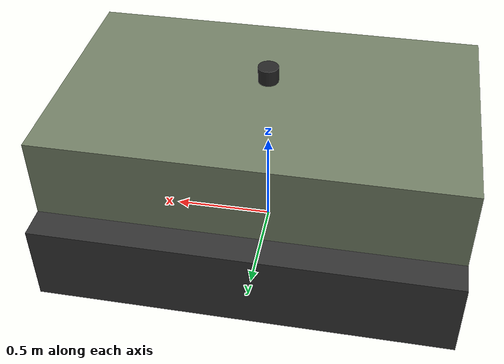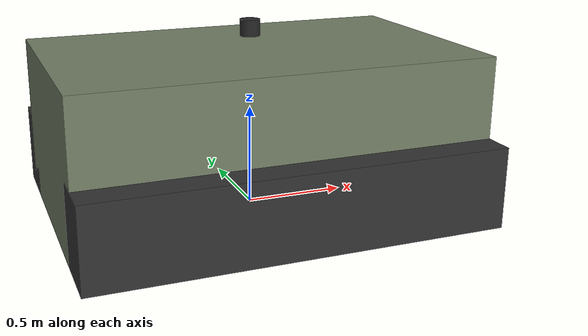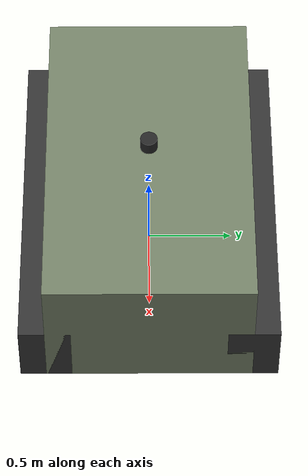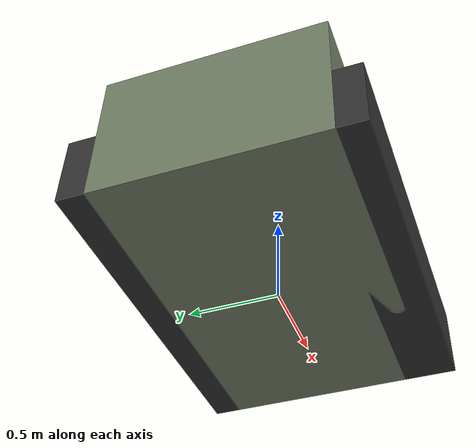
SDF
<?xml version="1.0"?>
<sdf version="1.9">
  <model name="ss500">
    <static>false</static>

    <!-- base_link: 차체 -->
    <link name="base_link">
      <pose>0 0 0.4 0 0 0</pose>

      <inertial>
        <!-- HIH-2 C48: 공차 800kg, 본체 600kg + 궤도 100kg x2 -->
        <mass>600.0</mass>
        <inertia>
          <!-- I = 1/12 * m * (h^2 + d^2), m=600kg 본체 -->
          <ixx>83.2</ixx>   <!-- 1/12 * 600 * (0.8^2 + 1.2^2) = 104 → 질량분포 보정 0.8 -->
          <iyy>185.6</iyy>  <!-- 1/12 * 600 * (0.8^2 + 2.0^2) = 232 → 보정 0.8 -->
          <izz>217.6</izz>  <!-- 1/12 * 600 * (1.2^2 + 2.0^2) = 272 → 보정 0.8 -->
          <ixy>0</ixy>
          <ixz>0</ixz>
          <iyz>0</iyz>
        </inertia>
      </inertial>

      <collision name="body_collision">
        <geometry>
          <box><size>2.0 1.2 0.8</size></box>
        </geometry>
      </collision>

      <visual name="body_visual">
        <geometry>
          <box><size>2.0 1.2 0.8</size></box>
        </geometry>
        <material>
          <ambient>0.3 0.35 0.3 1</ambient>
          <diffuse>0.45 0.5 0.4 1</diffuse>
          <specular>0.2 0.2 0.2 1</specular>
        </material>
      </visual>
    </link>

    <!-- 좌측 궤도 -->
    <link name="left_track">
      <!-- HIH-2 C48: 윤거 1.2m → offset 0.6m -->
      <pose relative_to="base_link">0 0.6 -0.2 0 0 0</pose>

      <inertial>
        <mass>100.0</mass>
        <inertia>
          <ixx>5.33</ixx>
          <iyy>34.33</iyy>
          <izz>30.33</izz>
          <ixy>0</ixy><ixz>0</ixz><iyz>0</iyz>
        </inertia>
      </inertial>

      <collision name="left_track_collision">
        <geometry>
          <box><size>2.0 0.3 0.4</size></box>
        </geometry>
        <surface>
          <friction>
            <ode>
              <mu>1.5</mu>
              <mu2>0.8</mu2>
            </ode>
          </friction>
          <contact>
            <ode>
              <kp>1e7</kp>
              <kd>1e3</kd>
            </ode>
          </contact>
        </surface>
      </collision>

      <visual name="left_track_visual">
        <geometry>
          <box><size>2.0 0.3 0.4</size></box>
        </geometry>
        <material>
          <ambient>0.15 0.15 0.15 1</ambient>
          <diffuse>0.2 0.2 0.2 1</diffuse>
        </material>
      </visual>
    </link>

    <joint name="left_track_joint" type="fixed">
      <parent>base_link</parent>
      <child>left_track</child>
    </joint>

    <!-- 우측 궤도 -->
    <link name="right_track">
      <!-- HIH-2 C48: 윤거 1.2m → offset 0.6m -->
      <pose relative_to="base_link">0 -0.6 -0.2 0 0 0</pose>

      <inertial>
        <mass>100.0</mass>
        <inertia>
          <ixx>5.33</ixx>
          <iyy>34.33</iyy>
          <izz>30.33</izz>
          <ixy>0</ixy><ixz>0</ixz><iyz>0</iyz>
        </inertia>
      </inertial>

      <collision name="right_track_collision">
        <geometry>
          <box><size>2.0 0.3 0.4</size></box>
        </geometry>
        <surface>
          <friction>
            <ode>
              <mu>1.5</mu>
              <mu2>0.8</mu2>
            </ode>
          </friction>
          <contact>
            <ode>
              <kp>1e7</kp>
              <kd>1e3</kd>
            </ode>
          </contact>
        </surface>
      </collision>

      <visual name="right_track_visual">
        <geometry>
          <box><size>2.0 0.3 0.4</size></box>
        </geometry>
        <material>
          <ambient>0.15 0.15 0.15 1</ambient>
          <diffuse>0.2 0.2 0.2 1</diffuse>
        </material>
      </visual>
    </link>

    <joint name="right_track_joint" type="fixed">
      <parent>base_link</parent>
      <child>right_track</child>
    </joint>

    <!-- LiDAR 센서 링크 -->
    <link name="lidar_link">
      <pose relative_to="base_link">0 0 0.5 0 0 0</pose>
      <inertial>
        <mass>0.5</mass>
        <inertia>
          <ixx>0.001</ixx><iyy>0.001</iyy><izz>0.001</izz>
          <ixy>0</ixy><ixz>0</ixz><iyz>0</iyz>
        </inertia>
      </inertial>

      <visual name="lidar_visual">
        <geometry>
          <cylinder><radius>0.05</radius><length>0.08</length></cylinder>
        </geometry>
        <material>
          <ambient>0.1 0.1 0.1 1</ambient>
          <diffuse>0.15 0.15 0.15 1</diffuse>
        </material>
      </visual>

      <sensor name="gpu_lidar" type="gpu_lidar">
        <always_on>true</always_on>
        <update_rate>10</update_rate>
        <topic>/sensor/lidar</topic>
        <visualize>true</visualize>
        <lidar>
          <scan>
            <horizontal>
              <samples>720</samples>
              <resolution>1</resolution>
              <min_angle>-3.14159</min_angle>
              <max_angle>3.14159</max_angle>
            </horizontal>
            <vertical>
              <samples>1</samples>
              <resolution>1</resolution>
              <min_angle>0</min_angle>
              <max_angle>0</max_angle>
            </vertical>
          </scan>
          <range>
            <min>0.3</min>
            <max>80.0</max>
            <resolution>0.01</resolution>
          </range>
          <noise>
            <type>gaussian</type>
            <mean>0.0</mean>
            <stddev>0.01</stddev>
          </noise>
        </lidar>
      </sensor>
    </link>

    <joint name="lidar_joint" type="fixed">
      <parent>base_link</parent>
      <child>lidar_link</child>
    </joint>

    <!-- IMU 센서 링크 -->
    <link name="imu_link">
      <pose relative_to="base_link">0 0 0.1 0 0 0</pose>
      <inertial>
        <mass>0.1</mass>
        <inertia>
          <ixx>0.0001</ixx><iyy>0.0001</iyy><izz>0.0001</izz>
          <ixy>0</ixy><ixz>0</ixz><iyz>0</iyz>
        </inertia>
      </inertial>

      <sensor name="imu_sensor" type="imu">
        <always_on>true</always_on>
        <update_rate>100</update_rate>
        <topic>/sensor/imu</topic>
        <imu>
          <angular_velocity>
            <x><noise type="gaussian"><mean>0</mean><stddev>0.0002</stddev></noise></x>
            <y><noise type="gaussian"><mean>0</mean><stddev>0.0002</stddev></noise></y>
            <z><noise type="gaussian"><mean>0</mean><stddev>0.0002</stddev></noise></z>
          </angular_velocity>
          <linear_acceleration>
            <x><noise type="gaussian"><mean>0</mean><stddev>0.017</stddev></noise></x>
            <y><noise type="gaussian"><mean>0</mean><stddev>0.017</stddev></noise></y>
            <z><noise type="gaussian"><mean>0</mean><stddev>0.017</stddev></noise></z>
          </linear_acceleration>
        </imu>
      </sensor>
    </link>

    <joint name="imu_joint" type="fixed">
      <parent>base_link</parent>
      <child>imu_link</child>
    </joint>

    <!-- 카메라 센서 링크 -->
    <link name="camera_link">
      <pose relative_to="base_link">0.9 0 0.3 0 0 0</pose>
      <inertial>
        <mass>0.2</mass>
        <inertia>
          <ixx>0.0002</ixx><iyy>0.0002</iyy><izz>0.0002</izz>
          <ixy>0</ixy><ixz>0</ixz><iyz>0</iyz>
        </inertia>
      </inertial>

      <visual name="camera_visual">
        <geometry>
          <box><size>0.05 0.08 0.05</size></box>
        </geometry>
        <material>
          <ambient>0.05 0.05 0.05 1</ambient>
          <diffuse>0.1 0.1 0.1 1</diffuse>
        </material>
      </visual>

      <sensor name="front_camera" type="camera">
        <always_on>true</always_on>
        <update_rate>5</update_rate>  <!-- Foxglove 검증용: 15→5fps (WSL2 렉 방지) -->
        <topic>/sensor/camera/front</topic>
        <visualize>true</visualize>
        <camera>
          <horizontal_fov>1.396</horizontal_fov>
          <image>
            <width>640</width>
            <height>480</height>
            <format>R8G8B8</format>
          </image>
          <clip>
            <near>0.1</near>
            <far>100</far>
          </clip>
          <noise>
            <type>gaussian</type>
            <mean>0.0</mean>
            <stddev>0.007</stddev>
          </noise>
        </camera>
      </sensor>
    </link>

    <joint name="camera_joint" type="fixed">
      <parent>base_link</parent>
      <child>camera_link</child>
    </joint>

    <!-- GPS 센서 링크 -->
    <link name="gps_link">
      <pose relative_to="base_link">-0.3 0 0.5 0 0 0</pose>
      <inertial>
        <mass>0.1</mass>
        <inertia>
          <ixx>0.0001</ixx><iyy>0.0001</iyy><izz>0.0001</izz>
          <ixy>0</ixy><ixz>0</ixz><iyz>0</iyz>
        </inertia>
      </inertial>

      <sensor name="gps_sensor" type="navsat">
        <always_on>true</always_on>
        <update_rate>10</update_rate>
        <topic>/sensor/gps</topic>
        <navsat>
          <position_sensing>
            <horizontal>
              <noise type="gaussian"><mean>0</mean><stddev>0.5</stddev></noise>
            </horizontal>
            <vertical>
              <noise type="gaussian"><mean>0</mean><stddev>1.0</stddev></noise>
            </vertical>
          </position_sensing>
        </navsat>
      </sensor>
    </link>

    <joint name="gps_joint" type="fixed">
      <parent>base_link</parent>
      <child>gps_link</child>
    </joint>

    <!-- Gazebo 플러그인 -->

    <!-- TrackedVehicle 플러그인: 궤도차량 물리 + /cmd_vel 수신 -->
    <plugin filename="gz-sim-tracked-vehicle-system"
            name="gz::sim::systems::TrackedVehicle">
      <body_link>base_link</body_link>
      <left_track>
        <link>left_track</link>
        <velocity_topic>/cmd_vel</velocity_topic>
        <min_velocity>-1.111</min_velocity>
        <max_velocity>1.111</max_velocity>
      </left_track>
      <right_track>
        <link>right_track</link>
        <velocity_topic>/cmd_vel</velocity_topic>
        <min_velocity>-1.111</min_velocity>
        <max_velocity>1.111</max_velocity>
      </right_track>
      <!-- HIH-2 C48: 윤거 1.2m, 최대속도 4km/h=1.111m/s -->
      <track_width>1.2</track_width>
      <steering_efficiency>0.9</steering_efficiency>
    </plugin>

    <!-- DiffDrive 플러그인: TrackedVehicle 미지원 시 폴백 -->

    <!-- Odometry Publisher: /odom (odom → base_link) -->
    <plugin filename="gz-sim-odometry-publisher-system"
            name="gz::sim::systems::OdometryPublisher">
      <odom_topic>/odom</odom_topic>
      <odom_frame>odom</odom_frame>
      <robot_base_frame>base_link</robot_base_frame>
      <odom_publish_frequency>50</odom_publish_frequency>
      <dimensions>3</dimensions>
    </plugin>

    <!-- Joint State Publisher: /joint_states -->
    <plugin filename="gz-sim-joint-state-publisher-system"
            name="gz::sim::systems::JointStatePublisher">
      <topic>/joint_states</topic>
      <update_rate>50</update_rate>
    </plugin>

  </model>
</sdf>
